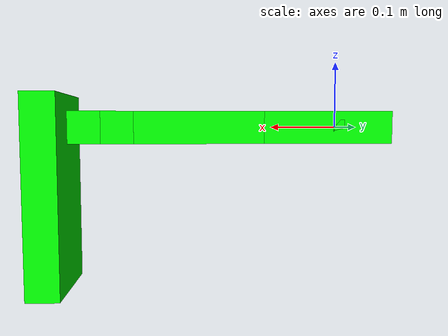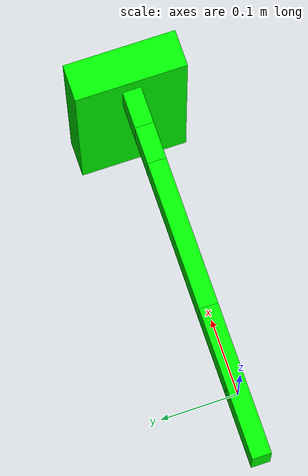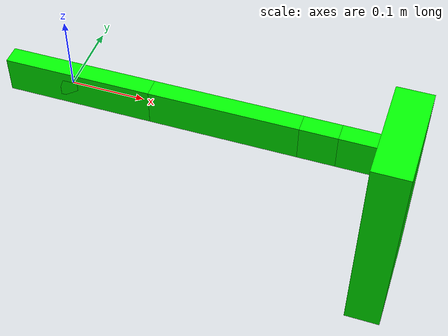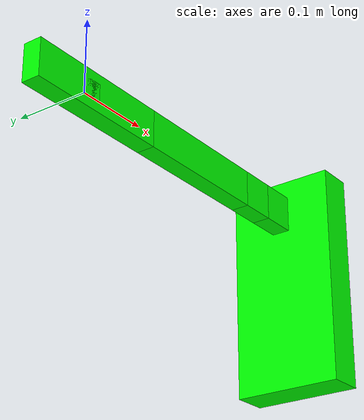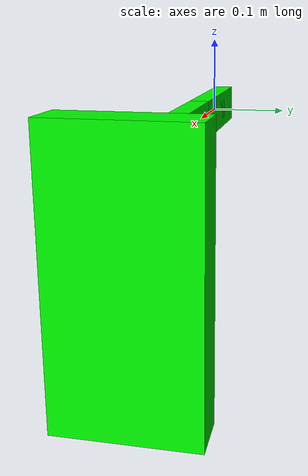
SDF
<?xml version='1.0'?>
<sdf version='1.9'>
  <model name='suction_anchor'>
        <link name="shoulder_link">
        <inertial>
            <mass>0.05</mass>
            <inertia>
                <ixx>0.0001</ixx>
                <ixy>0</ixy>
                <ixz>0</ixz>
                <iyy>0.0001</iyy>
                <iyz>0</iyz>
                <izz>0.0001</izz>
            </inertia>
        </inertial>
        <visual name='visual'>
            <geometry>
                <box>
                    <size>0.025 0.025 0.025</size>
                </box>
            </geometry>
            <material>
                <ambient>0.0 1 0.0 1</ambient>
                <diffuse>0.0 1 0.0 1</diffuse>
                <specular>0.0 1 0.0 1</specular>
            </material>
        </visual>
    </link>
        <link name="upper_arm">
        <pose relative_to="shoulder_link">.0125 0 0 0 0 0</pose>
        <inertial>
            <mass>0.05</mass>
            <inertia>
                <ixx>0.0001</ixx>
                <ixy>0</ixy>
                <ixz>0</ixz>
                <iyy>0.0001</iyy>
                <iyz>0</iyz>
                <izz>0.0001</izz>
            </inertia>
        </inertial>
        <visual name='visual'>
            <geometry>
                <box>
                    <size>0.2 0.025 0.05</size>
                </box>
            </geometry>
            <material>
                <ambient>0.0 1 0.0 1</ambient>
                <diffuse>0.0 1 0.0 1</diffuse>
                <specular>0.0 1 0.0 1</specular>
            </material>
        </visual>
    </link>
    <link name="forearm">
    <pose relative_to="upper_arm">0.2 0 0 0 0 0</pose>
        <inertial>
            <mass>0.05</mass>
            <inertia>
                <ixx>0.0001</ixx>
                <ixy>0</ixy>
                <ixz>0</ixz>
                <iyy>0.0001</iyy>
                <iyz>0</iyz>
                <izz>0.0001</izz>
            </inertia>
        </inertial>
        <visual name='visual'>
            <geometry>
                <box>
                    <size>0.2 0.025 0.05</size>
                </box>
            </geometry>
            <material>
                <ambient>0.0 1 0.0 1</ambient>
                <diffuse>0.0 1 0.0 1</diffuse>
                <specular>0.0 1 0.0 1</specular>
            </material>
        </visual>
    </link>
    <link name="wrist_pitch">
        <pose relative_to="forearm">0.125 0 0 0 0 0</pose>
            <inertial>
                <mass>0.05</mass>
                <inertia>
                    <ixx>0.0001</ixx>
                    <ixy>0</ixy>
                    <ixz>0</ixz>
                    <iyy>0.0001</iyy>
                    <iyz>0</iyz>
                    <izz>0.0001</izz>
                </inertia>
            </inertial>
            <visual name='visual'>
                <geometry>
                    <box>
                        <size>0.05 0.025 0.05</size>
                    </box>
                </geometry>
                <material>
                    <ambient>0.0 1 0.0 1</ambient>
                    <diffuse>0.0 1 0.0 1</diffuse>
                    <specular>0.0 1 0.0 1</specular>
                </material>
            </visual>
        </link>
        <link name="wrist_yaw">
            <pose relative_to="wrist_pitch">0.05 0 0 0 0 0</pose>
                <inertial>
                    <mass>0.05</mass>
                    <inertia>
                        <ixx>0.0001</ixx>
                        <ixy>0</ixy>
                        <ixz>0</ixz>
                        <iyy>0.0001</iyy>
                        <iyz>0</iyz>
                        <izz>0.0001</izz>
                    </inertia>
                </inertial>
                <visual name='visual'>
                    <geometry>
                        <box>
                            <size>0.05 0.025 0.05</size>
                        </box>
                    </geometry>
                    <material>
                        <ambient>0.0 1 0.0 1</ambient>
                        <diffuse>0.0 1 0.0 1</diffuse>
                        <specular>0.0 1 0.0 1</specular>
                    </material>
                </visual>
            </link>
    <link name='probe'>
    <pose relative_to="wrist_yaw">0.05 0 -0.1 0 0 0</pose> <!--angles are in radian-->
        <inertial>
            <mass>0.05</mass>
            <inertia>
                <ixx>0.0001</ixx>
                <ixy>0</ixy>
                <ixz>0</ixz>
                <iyy>0.0001</iyy>
                <iyz>0</iyz>
                <izz>0.0001</izz>
            </inertia>
        </inertial>
        <visual name='visual'>
            <geometry>
                <box>
                    <size>0.05 0.15 0.3</size>
                </box>
            </geometry>
            <material>
                <ambient>0.0 1 0.0 1</ambient>
                <diffuse>0.0 1 0.0 1</diffuse>
                <specular>0.0 1 0.0 1</specular>
            </material>
        </visual>
        <collision name='suction_collision'>
            <geometry>
                <box>
                    <size>0.05 0.15 0.3</size>
                </box>
            </geometry>
            <surface>
                <friction>
                    <ode>
                        <mu>
                            50.0
                        </mu>
                        <mu2>
                            50.0
                        </mu2>
                    </ode>
                </friction>
                <contact>
                    <ode>
                    <max_vel>0</max_vel>
                    <min_depth>0.001</min_depth>
                    </ode>
                </contact>
                </surface>
        </collision>
        <sensor name='sensor_contact' type='contact'>
            <contact>
                <collision>suction_collision</collision>
            </contact>
        </sensor>
    </link>
    <joint name='shoulder_joint' type='revolute'>
        <pose relative_to='upper_arm'>-0.1 0 0 0 0 0</pose>
        <parent>shoulder_link</parent>
        <child>upper_arm</child>
        <axis>
            <xyz expressed_in='__model__'>0 1 0</xyz>
            <limit>
                <lower>.4</lower>    <!--negative infinity-->
                <upper>1.4</upper>     <!--positive infinity-->
            </limit>
            <dynamics>
                <damping>10</damping>
                <spring_reference> .7 </spring_reference>
                <spring_stiffness> 400</spring_stiffness>
            </dynamics>
        </axis>
    </joint>
    <joint name='elbow_joint' type='revolute'>
        <pose relative_to='forearm'>-.1 0 0 0 0 0</pose>
        <parent>upper_arm</parent>
        <child>forearm</child>
        <axis>
            <xyz expressed_in='__model__'>0 1 0</xyz>
            <limit>
                <lower>-2</lower>    <!--negative infinity-->
                <upper>-.8</upper>     <!--positive infinity-->
            </limit>
            <dynamics>
                <damping>10</damping>
                <spring_reference> -1.4 </spring_reference>
                <spring_stiffness> 400</spring_stiffness>
            </dynamics>
        </axis>
    </joint>
    <joint name='wrist_joint_pitch' type='revolute'>
        <pose relative_to='wrist_pitch'>-.025 0 0 0 0 0</pose>
        <parent>forearm</parent>
        <child>wrist_pitch</child>
        <axis>
            <xyz expressed_in='__model__'>0 1 0</xyz>
            <limit>
                <lower>0</lower>    <!--negative infinity-->
                <upper>1.4</upper>     <!--positive infinity-->
            </limit>
            <dynamics>
                <damping>10</damping>
                <spring_reference> .7 </spring_reference>
                <spring_stiffness> 400</spring_stiffness>
            </dynamics>
        </axis>
    </joint>
    <joint name='wrist_joint_yaw' type='revolute'>
        <pose relative_to='wrist_yaw'>-.025 0 0 0 0 0</pose>
        <parent>wrist_pitch</parent>
        <child>wrist_yaw</child>
        <axis>
            <xyz expressed_in='__model__'>0 0 1</xyz>
            <limit>
                <lower>-.5</lower>    <!--negative infinity-->
                <upper>.5</upper>     <!--positive infinity-->
            </limit>
            <dynamics>
                <damping>1</damping>
                <spring_reference> 0 </spring_reference>
                <spring_stiffness> 20</spring_stiffness>
            </dynamics>
        </axis>
    </joint>
    <joint name='wrist_joint_roll' type='revolute'>
        <pose relative_to='wrist_yaw'>0.025 0 0 0 0 0</pose>
        <parent>wrist_joint_pitch</parent>
        <child>probe</child>
        <axis>
            <xyz expressed_in='__model__'>1 0 0</xyz>
            <limit>
                <lower>-.25</lower>    <!--negative infinity-->
                <upper>.25</upper>     <!--positive infinity-->
            </limit>
            <dynamics>
                <damping>1</damping>
                <spring_reference> 0 </spring_reference>
                <spring_stiffness> 20</spring_stiffness>
            </dynamics>
        </axis>
    </joint>

    <plugin filename="SuctionPlugin"
            name="SuctionPlugin">
        <parent_link>probe</parent_link>
        <detach_topic>/detach</detach_topic>
        <attach_topic>/attach</attach_topic>
        <output_topic>/attached_state</output_topic>
        <suction_force>100</suction_force>
    </plugin>
  </model>
</sdf>
